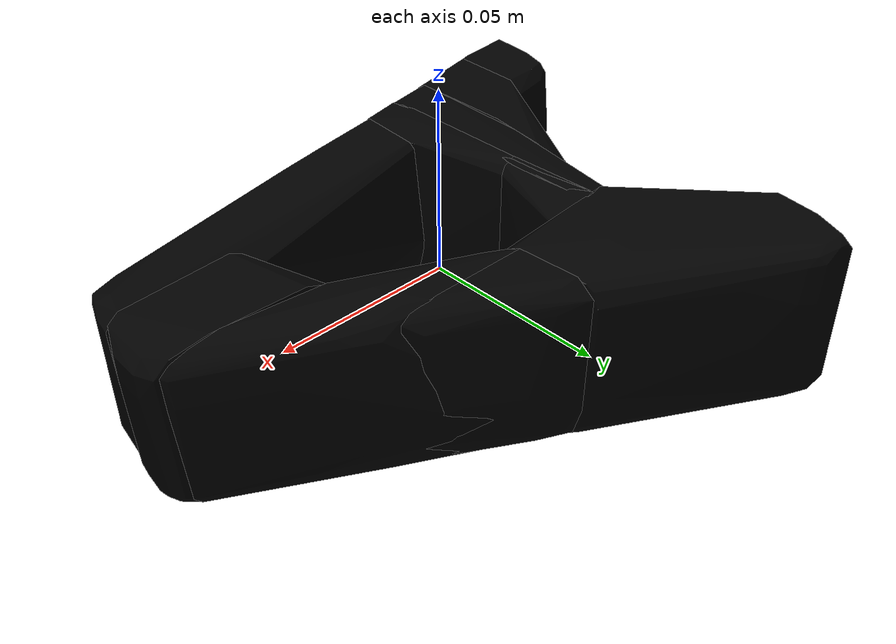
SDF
<?xml version='1.0' encoding='UTF-8'?>
<!-- This SDF was autogenerated by obj_to_drake_sdf.py -->
<sdf version="1.7">
  <model name="A_shape_coarse">
    <link name="body">
      <inertial>
        <pose>0 0 0 0 0 0</pose>
        <mass>1</mass>
        <inertia>
          <ixx>0.0014759562</ixx>
          <iyy>0.0018392742</iyy>
          <izz>0.0029445069</izz>
          <ixy>7.278566e-05</ixy>
          <ixz>4.1222404e-05</ixz>
          <iyz>-1.0656707e-05</iyz>
        </inertia>
      </inertial>
      <visual name="convex_0">
        <pose>0 0 0 0 0 0</pose>
        <geometry>
          <mesh>
            <uri>A_shape_coarse_convex_0.obj</uri>
          </mesh>
        </geometry>
        <material>
          <diffuse>0 0 0 1</diffuse>
        </material>
      </visual>
      <collision name="convex_0_volume">
        <pose>0 0 0 0 0 0</pose>
        <geometry>
          <mesh>
            <uri>A_shape_coarse_convex_0.obj</uri>
          </mesh>
        </geometry>
        <drake:proximity_properties xmlns:drake="uri:drake">
          <drake:compliant_hydroelastic/>
          <drake:hydroelastic_modulus> 3.0e7 </drake:hydroelastic_modulus>
          <drake:mesh_resolution_hint> 0.18 </drake:mesh_resolution_hint>
          <drake:hunt_crossley_dissipation>10</drake:hunt_crossley_dissipation>
          <drake:mu_dynamic>0.3</drake:mu_dynamic>
        </drake:proximity_properties>
      </collision>
      <visual name="convex_1">
        <pose>0 0 0 0 0 0</pose>
        <geometry>
          <mesh>
            <uri>A_shape_coarse_convex_1.obj</uri>
          </mesh>
        </geometry>
        <material>
          <diffuse>0 0 0 1</diffuse>
        </material>
      </visual>
      <collision name="convex_1_volume">
        <pose>0 0 0 0 0 0</pose>
        <geometry>
          <mesh>
            <uri>A_shape_coarse_convex_1.obj</uri>
          </mesh>
        </geometry>
        <drake:proximity_properties xmlns:drake="uri:drake">
          <drake:compliant_hydroelastic/>
          <drake:hydroelastic_modulus> 3.0e7 </drake:hydroelastic_modulus>
          <drake:mesh_resolution_hint> 0.18 </drake:mesh_resolution_hint>
          <drake:hunt_crossley_dissipation>10</drake:hunt_crossley_dissipation>
          <drake:mu_dynamic>0.3</drake:mu_dynamic>
        </drake:proximity_properties>
      </collision>
      <visual name="convex_2">
        <pose>0 0 0 0 0 0</pose>
        <geometry>
          <mesh>
            <uri>A_shape_coarse_convex_2.obj</uri>
          </mesh>
        </geometry>
        <material>
          <diffuse>0 0 0 1</diffuse>
        </material>
      </visual>
      <collision name="convex_2_volume">
        <pose>0 0 0 0 0 0</pose>
        <geometry>
          <mesh>
            <uri>A_shape_coarse_convex_2.obj</uri>
          </mesh>
        </geometry>
        <drake:proximity_properties xmlns:drake="uri:drake">
          <drake:compliant_hydroelastic/>
          <drake:hydroelastic_modulus> 3.0e7 </drake:hydroelastic_modulus>
          <drake:mesh_resolution_hint> 0.18 </drake:mesh_resolution_hint>
          <drake:hunt_crossley_dissipation>10</drake:hunt_crossley_dissipation>
          <drake:mu_dynamic>0.3</drake:mu_dynamic>
        </drake:proximity_properties>
      </collision>
      <visual name="convex_3">
        <pose>0 0 0 0 0 0</pose>
        <geometry>
          <mesh>
            <uri>A_shape_coarse_convex_3.obj</uri>
          </mesh>
        </geometry>
        <material>
          <diffuse>0 0 0 1</diffuse>
        </material>
      </visual>
      <collision name="convex_3_volume">
        <pose>0 0 0 0 0 0</pose>
        <geometry>
          <mesh>
            <uri>A_shape_coarse_convex_3.obj</uri>
          </mesh>
        </geometry>
        <drake:proximity_properties xmlns:drake="uri:drake">
          <drake:compliant_hydroelastic/>
          <drake:hydroelastic_modulus> 3.0e7 </drake:hydroelastic_modulus>
          <drake:mesh_resolution_hint> 0.18 </drake:mesh_resolution_hint>
          <drake:hunt_crossley_dissipation>10</drake:hunt_crossley_dissipation>
          <drake:mu_dynamic>0.3</drake:mu_dynamic>
        </drake:proximity_properties>
      </collision>
      <visual name="convex_4">
        <pose>0 0 0 0 0 0</pose>
        <geometry>
          <mesh>
            <uri>A_shape_coarse_convex_4.obj</uri>
          </mesh>
        </geometry>
        <material>
          <diffuse>0 0 0 1</diffuse>
        </material>
      </visual>
      <collision name="convex_4_volume">
        <pose>0 0 0 0 0 0</pose>
        <geometry>
          <mesh>
            <uri>A_shape_coarse_convex_4.obj</uri>
          </mesh>
        </geometry>
        <drake:proximity_properties xmlns:drake="uri:drake">
          <drake:compliant_hydroelastic/>
          <drake:hydroelastic_modulus> 3.0e7 </drake:hydroelastic_modulus>
          <drake:mesh_resolution_hint> 0.18 </drake:mesh_resolution_hint>
          <drake:hunt_crossley_dissipation>10</drake:hunt_crossley_dissipation>
          <drake:mu_dynamic>0.3</drake:mu_dynamic>
        </drake:proximity_properties>
      </collision>
      <visual name="convex_5">
        <pose>0 0 0 0 0 0</pose>
        <geometry>
          <mesh>
            <uri>A_shape_coarse_convex_5.obj</uri>
          </mesh>
        </geometry>
        <material>
          <diffuse>0 0 0 1</diffuse>
        </material>
      </visual>
      <collision name="convex_5_volume">
        <pose>0 0 0 0 0 0</pose>
        <geometry>
          <mesh>
            <uri>A_shape_coarse_convex_5.obj</uri>
          </mesh>
        </geometry>
        <drake:proximity_properties xmlns:drake="uri:drake">
          <drake:compliant_hydroelastic/>
          <drake:hydroelastic_modulus> 3.0e7 </drake:hydroelastic_modulus>
          <drake:mesh_resolution_hint> 0.18 </drake:mesh_resolution_hint>
          <drake:hunt_crossley_dissipation>10</drake:hunt_crossley_dissipation>
          <drake:mu_dynamic>0.3</drake:mu_dynamic>
        </drake:proximity_properties>
      </collision>
      <visual name="convex_6">
        <pose>0 0 0 0 0 0</pose>
        <geometry>
          <mesh>
            <uri>A_shape_coarse_convex_6.obj</uri>
          </mesh>
        </geometry>
        <material>
          <diffuse>0 0 0 1</diffuse>
        </material>
      </visual>
      <collision name="convex_6_volume">
        <pose>0 0 0 0 0 0</pose>
        <geometry>
          <mesh>
            <uri>A_shape_coarse_convex_6.obj</uri>
          </mesh>
        </geometry>
        <drake:proximity_properties xmlns:drake="uri:drake">
          <drake:compliant_hydroelastic/>
          <drake:hydroelastic_modulus> 3.0e7 </drake:hydroelastic_modulus>
          <drake:mesh_resolution_hint> 0.18 </drake:mesh_resolution_hint>
          <drake:hunt_crossley_dissipation>10</drake:hunt_crossley_dissipation>
          <drake:mu_dynamic>0.3</drake:mu_dynamic>
        </drake:proximity_properties>
      </collision>
      <visual name="convex_7">
        <pose>0 0 0 0 0 0</pose>
        <geometry>
          <mesh>
            <uri>A_shape_coarse_convex_7.obj</uri>
          </mesh>
        </geometry>
        <material>
          <diffuse>0 0 0 1</diffuse>
        </material>
      </visual>
      <collision name="convex_7_volume">
        <pose>0 0 0 0 0 0</pose>
        <geometry>
          <mesh>
            <uri>A_shape_coarse_convex_7.obj</uri>
          </mesh>
        </geometry>
        <drake:proximity_properties xmlns:drake="uri:drake">
          <drake:compliant_hydroelastic/>
          <drake:hydroelastic_modulus> 3.0e7 </drake:hydroelastic_modulus>
          <drake:mesh_resolution_hint> 0.18 </drake:mesh_resolution_hint>
          <drake:hunt_crossley_dissipation>10</drake:hunt_crossley_dissipation>
          <drake:mu_dynamic>0.3</drake:mu_dynamic>
        </drake:proximity_properties>
      </collision>
      <visual name="convex_8">
        <pose>0 0 0 0 0 0</pose>
        <geometry>
          <mesh>
            <uri>A_shape_coarse_convex_8.obj</uri>
          </mesh>
        </geometry>
        <material>
          <diffuse>0 0 0 1</diffuse>
        </material>
      </visual>
      <collision name="convex_8_volume">
        <pose>0 0 0 0 0 0</pose>
        <geometry>
          <mesh>
            <uri>A_shape_coarse_convex_8.obj</uri>
          </mesh>
        </geometry>
        <drake:proximity_properties xmlns:drake="uri:drake">
          <drake:compliant_hydroelastic/>
          <drake:hydroelastic_modulus> 3.0e7 </drake:hydroelastic_modulus>
          <drake:mesh_resolution_hint> 0.18 </drake:mesh_resolution_hint>
          <drake:hunt_crossley_dissipation>10</drake:hunt_crossley_dissipation>
          <drake:mu_dynamic>0.3</drake:mu_dynamic>
        </drake:proximity_properties>
      </collision>
      <visual name="convex_9">
        <pose>0 0 0 0 0 0</pose>
        <geometry>
          <mesh>
            <uri>A_shape_coarse_convex_9.obj</uri>
          </mesh>
        </geometry>
        <material>
          <diffuse>0 0 0 1</diffuse>
        </material>
      </visual>
      <collision name="convex_9_volume">
        <pose>0 0 0 0 0 0</pose>
        <geometry>
          <mesh>
            <uri>A_shape_coarse_convex_9.obj</uri>
          </mesh>
        </geometry>
        <drake:proximity_properties xmlns:drake="uri:drake">
          <drake:compliant_hydroelastic/>
          <drake:hydroelastic_modulus> 3.0e7 </drake:hydroelastic_modulus>
          <drake:mesh_resolution_hint> 0.18 </drake:mesh_resolution_hint>
          <drake:hunt_crossley_dissipation>10</drake:hunt_crossley_dissipation>
          <drake:mu_dynamic>0.3</drake:mu_dynamic>
        </drake:proximity_properties>
      </collision>
    </link>
  </model>
</sdf>
